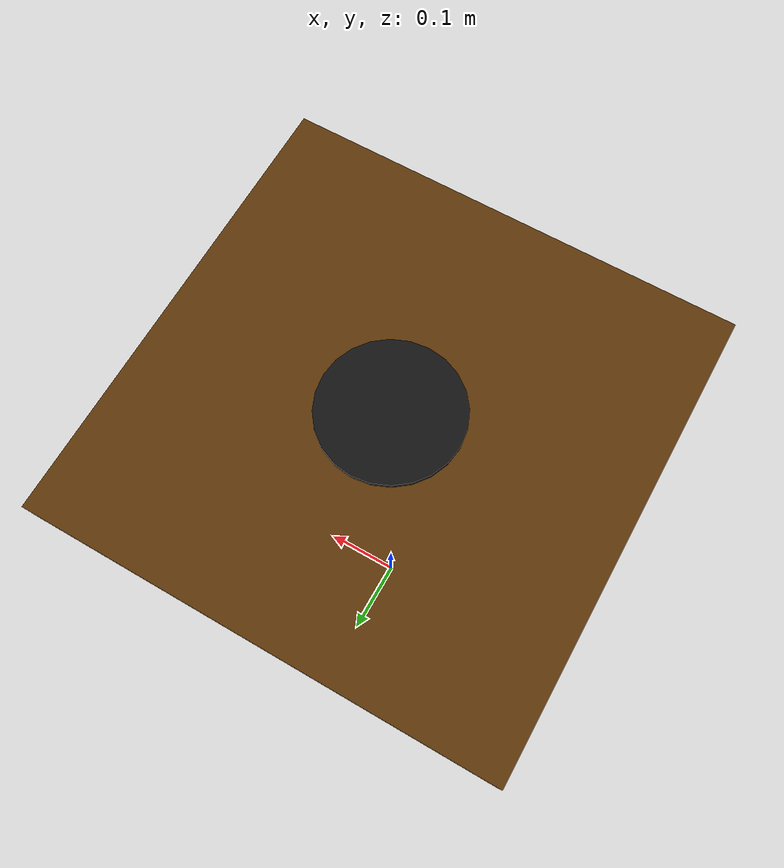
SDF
<?xml version="1.0"?>
<sdf version="1.8">
  <model name="glass_bin">
    <static>true</static>
    <link name="link">
      <inertial>
        <mass>3.5</mass>
        <inertia>
          <ixx>0.08</ixx><ixy>0</ixy><ixz>0</ixz>
          <iyy>0.08</iyy><iyz>0</iyz>
          <izz>0.05</izz>
        </inertia>
      </inertial>

      <!-- Main body -->
      <collision name="body_collision">
        <pose>0 0 0.28 0 0 0</pose>
        <geometry><box><size>0.38 0.38 0.56</size></box></geometry>
      </collision>
      <visual name="body_visual">
        <pose>0 0 0.28 0 0 0</pose>
        <geometry><box><size>0.38 0.38 0.56</size></box></geometry>
        <material>
          <ambient>0.45 0.28 0.05 1</ambient>
          <diffuse>0.55 0.35 0.08 1</diffuse>
          <specular>0.2 0.15 0.05 1</specular>
        </material>
      </visual>

      <!-- Lid -->
      <collision name="lid_collision">
        <pose>0 0 0.575 0 0 0</pose>
        <geometry><box><size>0.40 0.40 0.03</size></box></geometry>
      </collision>
      <visual name="lid_visual">
        <pose>0 0 0.575 0 0 0</pose>
        <geometry><box><size>0.40 0.40 0.03</size></box></geometry>
        <material>
          <ambient>0.30 0.18 0.03 1</ambient>
          <diffuse>0.38 0.22 0.04 1</diffuse>
          <specular>0.1 0.08 0.02 1</specular>
        </material>
      </visual>

      <!-- Circular opening on lid -->
      <visual name="opening_visual">
        <pose>0 0 0.592 0 0 0</pose>
        <geometry><cylinder><radius>0.06</radius><length>0.005</length></cylinder></geometry>
        <material>
          <ambient>0.05 0.05 0.05 1</ambient>
          <diffuse>0.08 0.08 0.08 1</diffuse>
        </material>
      </visual>

      <!-- Label strip -->
      <visual name="label_visual">
        <pose>0.192 0 0.30 0 0 0</pose>
        <geometry><box><size>0.005 0.28 0.18</size></box></geometry>
        <material>
          <ambient>0.9 0.9 0.9 1</ambient>
          <diffuse>0.95 0.95 0.95 1</diffuse>
        </material>
      </visual>

      <!-- Reinforcement band top -->
      <visual name="band_top_visual">
        <pose>0 0 0.50 0 0 0</pose>
        <geometry><box><size>0.385 0.385 0.025</size></box></geometry>
        <material>
          <ambient>0.30 0.18 0.03 1</ambient>
          <diffuse>0.38 0.22 0.04 1</diffuse>
        </material>
      </visual>

      <!-- Reinforcement band bottom -->
      <visual name="band_bottom_visual">
        <pose>0 0 0.06 0 0 0</pose>
        <geometry><box><size>0.385 0.385 0.025</size></box></geometry>
        <material>
          <ambient>0.30 0.18 0.03 1</ambient>
          <diffuse>0.38 0.22 0.04 1</diffuse>
        </material>
      </visual>

      <!-- Base -->
      <collision name="base_collision">
        <pose>0 0 0.02 0 0 0</pose>
        <geometry><box><size>0.36 0.36 0.04</size></box></geometry>
      </collision>
      <visual name="base_visual">
        <pose>0 0 0.02 0 0 0</pose>
        <geometry><box><size>0.36 0.36 0.04</size></box></geometry>
        <material>
          <ambient>0.20 0.12 0.02 1</ambient>
          <diffuse>0.25 0.15 0.03 1</diffuse>
        </material>
      </visual>
    </link>
  </model>
</sdf>
